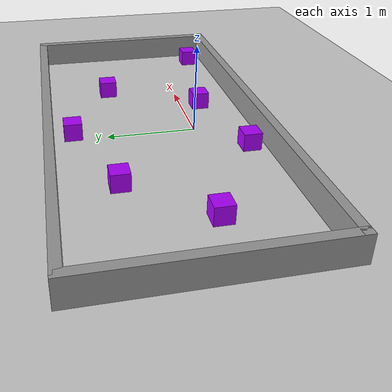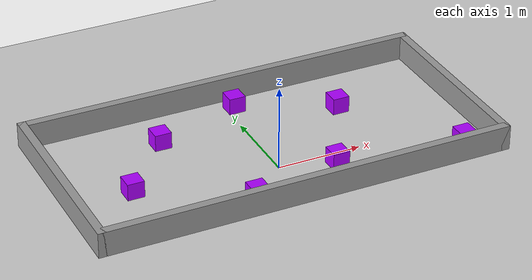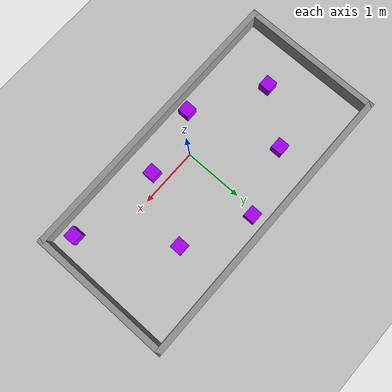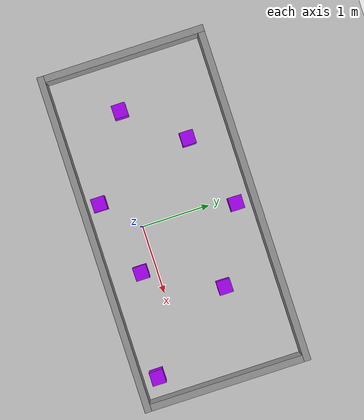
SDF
<sdf version="1.7">
 <world name="default">
  <light name="sun" type="directional">
   <pose>0 0 10 0 -0 0</pose>
   <diffuse>0.8 0.8 0.8 1</diffuse>
   <specular>0.2 0.2 0.2 1</specular>
   <attenuation>
    <range>1000</range>
    <constant>0.9</constant>
    <linear>0.01</linear>
    <quadratic>0.001</quadratic>
   </attenuation>
   <direction>-0.5 0.1 -0.9</direction>
   <spot><inner_angle>0</inner_angle><outer_angle>0</outer_angle><falloff>0</falloff></spot>
  </light>
  <model name="ground_plane">
   <static>1</static>
   <link name="link">
    <collision name="collision">
     <geometry><plane><normal>0 0 1</normal><size>100 100</size></plane></geometry>
     <surface><friction><ode><mu>100</mu><mu2>50</mu2></ode></friction></surface>
    </collision>
    <visual name="visual">
     <cast_shadows>0</cast_shadows>
     <geometry><plane><normal>0 0 1</normal><size>100 100</size></plane></geometry>
     <material>
      <script><uri>file://media/materials/scripts/gazebo.material</uri><name>Gazebo/Grey</name></script>
     </material>
    </visual>
   </link>
  </model>
  <gravity>0 0 -9.8</gravity>
  <magnetic_field>6e-06 2.3e-05 -4.2e-05</magnetic_field>
  <atmosphere type="adiabatic"/>
  <physics type="ode">
   <max_step_size>0.001</max_step_size>
   <real_time_factor>1</real_time_factor>
   <real_time_update_rate>1000</real_time_update_rate>
  </physics>
  <scene><ambient>0.4 0.4 0.4 1</ambient><background>0.7 0.7 0.7 1</background><shadows>1</shadows></scene>
  <audio><device>default</device></audio>
  <spherical_coordinates>
   <surface_model>EARTH_WGS84</surface_model>
   <latitude_deg>0</latitude_deg>
   <longitude_deg>0</longitude_deg>
   <elevation>0</elevation>
   <heading_deg>0</heading_deg>
  </spherical_coordinates>
  <model name="parking_lot">
   <pose>0.03 0.458 0 0 -0 0</pose>
   <link name="Wall_13">
    <collision name="Wall_13_Collision">
     <geometry><box><size>4.94967 0.1 0.3</size></box></geometry>
     <pose>0 0 0.15 0 -0 0</pose>
    </collision>
    <visual name="Wall_13_Visual">
     <pose>0 0 0.15 0 -0 0</pose>
     <geometry><box><size>4.94967 0.1 0.3</size></box></geometry>
     <material>
      <script><uri>file://media/materials/scripts/gazebo.material</uri><name>Gazebo/Grey</name></script>
      <ambient>1 1 1 1</ambient>
     </material>
     <meta><layer>0</layer></meta>
    </visual>
    <pose>0 -1.175 0 0 -0 0</pose>
   </link>
   <link name="Wall_18">
    <collision name="Wall_18_Collision">
     <geometry><box><size>2.45 0.1 0.3</size></box></geometry>
     <pose>0 0 0.15 0 -0 0</pose>
    </collision>
    <visual name="Wall_18_Visual">
     <pose>0 0 0.15 0 -0 0</pose>
     <geometry><box><size>2.45 0.1 0.3</size></box></geometry>
     <material>
      <script><uri>file://media/materials/scripts/gazebo.material</uri><name>Gazebo/Grey</name></script>
      <ambient>1 1 1 1</ambient>
     </material>
     <meta><layer>0</layer></meta>
    </visual>
    <pose>-2.425 0 0 0 -0 1.5708</pose>
   </link>
   <link name="Wall_19">
    <collision name="Wall_19_Collision">
     <geometry><box><size>4.95 0.1 0.3</size></box></geometry>
     <pose>0 0 0.15 0 -0 0</pose>
    </collision>
    <visual name="Wall_19_Visual">
     <pose>0 0 0.15 0 -0 0</pose>
     <geometry><box><size>4.95 0.1 0.3</size></box></geometry>
     <material>
      <script><uri>file://media/materials/scripts/gazebo.material</uri><name>Gazebo/Grey</name></script>
      <ambient>1 1 1 1</ambient>
     </material>
     <meta><layer>0</layer></meta>
    </visual>
    <pose>0 1.175 0 0 -0 0</pose>
   </link>
   <link name="Wall_20">
    <collision name="Wall_20_Collision">
     <geometry><box><size>2.45 0.1 0.3</size></box></geometry>
     <pose>0 0 0.15 0 -0 0</pose>
    </collision>
    <visual name="Wall_20_Visual">
     <pose>0 0 0.15 0 -0 0</pose>
     <geometry><box><size>2.45 0.1 0.3</size></box></geometry>
     <material>
      <script><uri>file://media/materials/scripts/gazebo.material</uri><name>Gazebo/Grey</name></script>
      <ambient>1 1 1 1</ambient>
     </material>
     <meta><layer>0</layer></meta>
    </visual>
    <pose>2.425 0 0 0 -0 -1.5708</pose>
   </link>
   <static>1</static>
  </model>
  <model name="cube_v_clone_2">
   <link name="link_2">
    <pose>0 0 0.1 0 -0 0</pose>
    <inertial>
     <mass>1</mass>
     <inertia>
      <ixx>0.166667</ixx>
      <ixy>0</ixy>
      <ixz>0</ixz>
      <iyy>0.166667</iyy>
      <iyz>0</iyz>
      <izz>0.166667</izz>
     </inertia>
    </inertial>
    <visual name="visual">
     <geometry><box><size>0.2 0.2 0.2</size></box></geometry>
     <material>
      <lighting>1</lighting>
      <script><uri>file://media/materials/scripts/gazebo.material</uri><name>Gazebo/Grey</name></script>
      <ambient>0.682 0 1 1</ambient>
      <diffuse>0.682 0 1 1</diffuse>
      <specular>0 0 0 1</specular>
      <emissive>0 0 0 1</emissive>
      <shader type="vertex"><normal_map>__default__</normal_map></shader>
     </material>
    </visual>
    <collision name="collision">
     <geometry><box><size>0.2 0.2 0.2</size></box></geometry>
     <surface>
      <friction>
       <ode><mu>1</mu><mu2>1</mu2><fdir1>0 0 0</fdir1><slip1>0</slip1><slip2>0</slip2></ode>
       <torsional>
        <coefficient>1</coefficient>
        <patch_radius>0</patch_radius>
        <surface_radius>0</surface_radius>
        <use_patch_radius>1</use_patch_radius>
        <ode><slip>0</slip></ode>
       </torsional>
      </friction>
      <bounce><restitution_coefficient>0</restitution_coefficient><threshold>1e+06</threshold></bounce>
      <contact>
       <collide_without_contact>0</collide_without_contact>
       <collide_without_contact_bitmask>1</collide_without_contact_bitmask>
       <collide_bitmask>1</collide_bitmask>
       <ode>
        <soft_cfm>0</soft_cfm>
        <soft_erp>0.2</soft_erp>
        <kp>1e+13</kp>
        <kd>1</kd>
        <max_vel>0.01</max_vel>
        <min_depth>0</min_depth>
       </ode>
       <bullet>
        <split_impulse>1</split_impulse>
        <split_impulse_penetration_threshold>-0.01</split_impulse_penetration_threshold>
        <soft_cfm>0</soft_cfm>
        <soft_erp>0.2</soft_erp>
        <kp>1e+13</kp>
        <kd>1</kd>
       </bullet>
      </contact>
     </surface>
    </collision>
   </link>
   <static>1</static>
   <pose>-1 1 0 0 -0 0</pose>
  </model>
  <model name="cube_v_clone_2_clone">
   <link name="link_2">
    <pose>0 0 0.1 0 -0 0</pose>
    <inertial>
     <mass>1</mass>
     <inertia>
      <ixx>0.166667</ixx>
      <ixy>0</ixy>
      <ixz>0</ixz>
      <iyy>0.166667</iyy>
      <iyz>0</iyz>
      <izz>0.166667</izz>
     </inertia>
    </inertial>
    <visual name="visual">
     <geometry><box><size>0.2 0.2 0.2</size></box></geometry>
     <material>
      <lighting>1</lighting>
      <script><uri>file://media/materials/scripts/gazebo.material</uri><name>Gazebo/Grey</name></script>
      <ambient>0.682 0 1 1</ambient>
      <diffuse>0.682 0 1 1</diffuse>
      <specular>0 0 0 1</specular>
      <emissive>0 0 0 1</emissive>
      <shader type="vertex"><normal_map>__default__</normal_map></shader>
     </material>
    </visual>
    <collision name="collision">
     <geometry><box><size>0.2 0.2 0.2</size></box></geometry>
     <surface>
      <friction>
       <ode><mu>1</mu><mu2>1</mu2><fdir1>0 0 0</fdir1><slip1>0</slip1><slip2>0</slip2></ode>
       <torsional>
        <coefficient>1</coefficient>
        <patch_radius>0</patch_radius>
        <surface_radius>0</surface_radius>
        <use_patch_radius>1</use_patch_radius>
        <ode><slip>0</slip></ode>
       </torsional>
      </friction>
      <bounce><restitution_coefficient>0</restitution_coefficient><threshold>1e+06</threshold></bounce>
      <contact>
       <collide_without_contact>0</collide_without_contact>
       <collide_without_contact_bitmask>1</collide_without_contact_bitmask>
       <collide_bitmask>1</collide_bitmask>
       <ode>
        <soft_cfm>0</soft_cfm>
        <soft_erp>0.2</soft_erp>
        <kp>1e+13</kp>
        <kd>1</kd>
        <max_vel>0.01</max_vel>
        <min_depth>0</min_depth>
       </ode>
       <bullet>
        <split_impulse>1</split_impulse>
        <split_impulse_penetration_threshold>-0.01</split_impulse_penetration_threshold>
        <soft_cfm>0</soft_cfm>
        <soft_erp>0.2</soft_erp>
        <kp>1e+13</kp>
        <kd>1</kd>
       </bullet>
      </contact>
     </surface>
    </collision>
   </link>
   <static>1</static>
   <pose>-1.6631 0.201551 0 0 -0 0</pose>
  </model>
  <model name="cube_v_clone_2_clone_0">
   <link name="link_2">
    <pose>0 0 0.1 0 -0 0</pose>
    <inertial>
     <mass>1</mass>
     <inertia>
      <ixx>0.166667</ixx>
      <ixy>0</ixy>
      <ixz>0</ixz>
      <iyy>0.166667</iyy>
      <iyz>0</iyz>
      <izz>0.166667</izz>
     </inertia>
    </inertial>
    <visual name="visual">
     <geometry><box><size>0.2 0.2 0.2</size></box></geometry>
     <material>
      <lighting>1</lighting>
      <script><uri>file://media/materials/scripts/gazebo.material</uri><name>Gazebo/Grey</name></script>
      <ambient>0.682 0 1 1</ambient>
      <diffuse>0.682 0 1 1</diffuse>
      <specular>0 0 0 1</specular>
      <emissive>0 0 0 1</emissive>
      <shader type="vertex"><normal_map>__default__</normal_map></shader>
     </material>
    </visual>
    <collision name="collision">
     <geometry><box><size>0.2 0.2 0.2</size></box></geometry>
     <surface>
      <friction>
       <ode><mu>1</mu><mu2>1</mu2><fdir1>0 0 0</fdir1><slip1>0</slip1><slip2>0</slip2></ode>
       <torsional>
        <coefficient>1</coefficient>
        <patch_radius>0</patch_radius>
        <surface_radius>0</surface_radius>
        <use_patch_radius>1</use_patch_radius>
        <ode><slip>0</slip></ode>
       </torsional>
      </friction>
      <bounce><restitution_coefficient>0</restitution_coefficient><threshold>1e+06</threshold></bounce>
      <contact>
       <collide_without_contact>0</collide_without_contact>
       <collide_without_contact_bitmask>1</collide_without_contact_bitmask>
       <collide_bitmask>1</collide_bitmask>
       <ode>
        <soft_cfm>0</soft_cfm>
        <soft_erp>0.2</soft_erp>
        <kp>1e+13</kp>
        <kd>1</kd>
        <max_vel>0.01</max_vel>
        <min_depth>0</min_depth>
       </ode>
       <bullet>
        <split_impulse>1</split_impulse>
        <split_impulse_penetration_threshold>-0.01</split_impulse_penetration_threshold>
        <soft_cfm>0</soft_cfm>
        <soft_erp>0.2</soft_erp>
        <kp>1e+13</kp>
        <kd>1</kd>
       </bullet>
      </contact>
     </surface>
    </collision>
   </link>
   <static>1</static>
   <pose>1.16895 0.848747 0 0 -0 0</pose>
  </model>
  <model name="cube_v_clone_2_clone_1">
   <link name="link_2">
    <pose>0 0 0.1 0 -0 0</pose>
    <inertial>
     <mass>1</mass>
     <inertia>
      <ixx>0.166667</ixx>
      <ixy>0</ixy>
      <ixz>0</ixz>
      <iyy>0.166667</iyy>
      <iyz>0</iyz>
      <izz>0.166667</izz>
     </inertia>
    </inertial>
    <visual name="visual">
     <geometry><box><size>0.2 0.2 0.2</size></box></geometry>
     <material>
      <lighting>1</lighting>
      <script><uri>file://media/materials/scripts/gazebo.material</uri><name>Gazebo/Grey</name></script>
      <ambient>0.682 0 1 1</ambient>
      <diffuse>0.682 0 1 1</diffuse>
      <specular>0 0 0 1</specular>
      <emissive>0 0 0 1</emissive>
      <shader type="vertex"><normal_map>__default__</normal_map></shader>
     </material>
    </visual>
    <collision name="collision">
     <geometry><box><size>0.2 0.2 0.2</size></box></geometry>
     <surface>
      <friction>
       <ode><mu>1</mu><mu2>1</mu2><fdir1>0 0 0</fdir1><slip1>0</slip1><slip2>0</slip2></ode>
       <torsional>
        <coefficient>1</coefficient>
        <patch_radius>0</patch_radius>
        <surface_radius>0</surface_radius>
        <use_patch_radius>1</use_patch_radius>
        <ode><slip>0</slip></ode>
       </torsional>
      </friction>
      <bounce><restitution_coefficient>0</restitution_coefficient><threshold>1e+06</threshold></bounce>
      <contact>
       <collide_without_contact>0</collide_without_contact>
       <collide_without_contact_bitmask>1</collide_without_contact_bitmask>
       <collide_bitmask>1</collide_bitmask>
       <ode>
        <soft_cfm>0</soft_cfm>
        <soft_erp>0.2</soft_erp>
        <kp>1e+13</kp>
        <kd>1</kd>
        <max_vel>0.01</max_vel>
        <min_depth>0</min_depth>
       </ode>
       <bullet>
        <split_impulse>1</split_impulse>
        <split_impulse_penetration_threshold>-0.01</split_impulse_penetration_threshold>
        <soft_cfm>0</soft_cfm>
        <soft_erp>0.2</soft_erp>
        <kp>1e+13</kp>
        <kd>1</kd>
       </bullet>
      </contact>
     </surface>
    </collision>
   </link>
   <static>1</static>
   <pose>0.089935 1.36922 0 0 -0 0</pose>
  </model>
  <model name="cube_v_clone_2_clone_2">
   <link name="link_2">
    <pose>0 0 0.1 0 -0 0</pose>
    <inertial>
     <mass>1</mass>
     <inertia>
      <ixx>0.166667</ixx>
      <ixy>0</ixy>
      <ixz>0</ixz>
      <iyy>0.166667</iyy>
      <iyz>0</iyz>
      <izz>0.166667</izz>
     </inertia>
    </inertial>
    <visual name="visual">
     <geometry><box><size>0.2 0.2 0.2</size></box></geometry>
     <material>
      <lighting>1</lighting>
      <script><uri>file://media/materials/scripts/gazebo.material</uri><name>Gazebo/Grey</name></script>
      <ambient>0.682 0 1 1</ambient>
      <diffuse>0.682 0 1 1</diffuse>
      <specular>0 0 0 1</specular>
      <emissive>0 0 0 1</emissive>
      <shader type="vertex"><normal_map>__default__</normal_map></shader>
     </material>
    </visual>
    <collision name="collision">
     <geometry><box><size>0.2 0.2 0.2</size></box></geometry>
     <surface>
      <friction>
       <ode><mu>1</mu><mu2>1</mu2><fdir1>0 0 0</fdir1><slip1>0</slip1><slip2>0</slip2></ode>
       <torsional>
        <coefficient>1</coefficient>
        <patch_radius>0</patch_radius>
        <surface_radius>0</surface_radius>
        <use_patch_radius>1</use_patch_radius>
        <ode><slip>0</slip></ode>
       </torsional>
      </friction>
      <bounce><restitution_coefficient>0</restitution_coefficient><threshold>1e+06</threshold></bounce>
      <contact>
       <collide_without_contact>0</collide_without_contact>
       <collide_without_contact_bitmask>1</collide_without_contact_bitmask>
       <collide_bitmask>1</collide_bitmask>
       <ode>
        <soft_cfm>0</soft_cfm>
        <soft_erp>0.2</soft_erp>
        <kp>1e+13</kp>
        <kd>1</kd>
        <max_vel>0.01</max_vel>
        <min_depth>0</min_depth>
       </ode>
       <bullet>
        <split_impulse>1</split_impulse>
        <split_impulse_penetration_threshold>-0.01</split_impulse_penetration_threshold>
        <soft_cfm>0</soft_cfm>
        <soft_erp>0.2</soft_erp>
        <kp>1e+13</kp>
        <kd>1</kd>
       </bullet>
      </contact>
     </surface>
    </collision>
   </link>
   <static>1</static>
   <pose>-0.494131 -0.485562 0 0 -0 0</pose>
  </model>
  <model name="cube_v_clone_2_clone_3">
   <link name="link_2">
    <pose>0 0 0.1 0 -0 0</pose>
    <inertial>
     <mass>1</mass>
     <inertia>
      <ixx>0.166667</ixx>
      <ixy>0</ixy>
      <ixz>0</ixz>
      <iyy>0.166667</iyy>
      <iyz>0</iyz>
      <izz>0.166667</izz>
     </inertia>
    </inertial>
    <visual name="visual">
     <geometry><box><size>0.2 0.2 0.2</size></box></geometry>
     <material>
      <lighting>1</lighting>
      <script><uri>file://media/materials/scripts/gazebo.material</uri><name>Gazebo/Grey</name></script>
      <ambient>0.682 0 1 1</ambient>
      <diffuse>0.682 0 1 1</diffuse>
      <specular>0 0 0 1</specular>
      <emissive>0 0 0 1</emissive>
      <shader type="vertex"><normal_map>__default__</normal_map></shader>
     </material>
    </visual>
    <collision name="collision">
     <geometry><box><size>0.2 0.2 0.2</size></box></geometry>
     <surface>
      <friction>
       <ode><mu>1</mu><mu2>1</mu2><fdir1>0 0 0</fdir1><slip1>0</slip1><slip2>0</slip2></ode>
       <torsional>
        <coefficient>1</coefficient>
        <patch_radius>0</patch_radius>
        <surface_radius>0</surface_radius>
        <use_patch_radius>1</use_patch_radius>
        <ode><slip>0</slip></ode>
       </torsional>
      </friction>
      <bounce><restitution_coefficient>0</restitution_coefficient><threshold>1e+06</threshold></bounce>
      <contact>
       <collide_without_contact>0</collide_without_contact>
       <collide_without_contact_bitmask>1</collide_without_contact_bitmask>
       <collide_bitmask>1</collide_bitmask>
       <ode>
        <soft_cfm>0</soft_cfm>
        <soft_erp>0.2</soft_erp>
        <kp>1e+13</kp>
        <kd>1</kd>
        <max_vel>0.01</max_vel>
        <min_depth>0</min_depth>
       </ode>
       <bullet>
        <split_impulse>1</split_impulse>
        <split_impulse_penetration_threshold>-0.01</split_impulse_penetration_threshold>
        <soft_cfm>0</soft_cfm>
        <soft_erp>0.2</soft_erp>
        <kp>1e+13</kp>
        <kd>1</kd>
       </bullet>
      </contact>
     </surface>
    </collision>
   </link>
   <static>1</static>
   <pose>2.10147 -0.453561 0 0 -0 0</pose>
  </model>
  <model name="cube_v_clone_2_clone_4">
   <link name="link_2">
    <pose>0 0 0.1 0 -0 0</pose>
    <inertial>
     <mass>1</mass>
     <inertia>
      <ixx>0.166667</ixx>
      <ixy>0</ixy>
      <ixz>0</ixz>
      <iyy>0.166667</iyy>
      <iyz>0</iyz>
      <izz>0.166667</izz>
     </inertia>
    </inertial>
    <visual name="visual">
     <geometry><box><size>0.2 0.2 0.2</size></box></geometry>
     <material>
      <lighting>1</lighting>
      <script><uri>file://media/materials/scripts/gazebo.material</uri><name>Gazebo/Grey</name></script>
      <ambient>0.682 0 1 1</ambient>
      <diffuse>0.682 0 1 1</diffuse>
      <specular>0 0 0 1</specular>
      <emissive>0 0 0 1</emissive>
      <shader type="vertex"><normal_map>__default__</normal_map></shader>
     </material>
    </visual>
    <collision name="collision">
     <geometry><box><size>0.2 0.2 0.2</size></box></geometry>
     <surface>
      <friction>
       <ode><mu>1</mu><mu2>1</mu2><fdir1>0 0 0</fdir1><slip1>0</slip1><slip2>0</slip2></ode>
       <torsional>
        <coefficient>1</coefficient>
        <patch_radius>0</patch_radius>
        <surface_radius>0</surface_radius>
        <use_patch_radius>1</use_patch_radius>
        <ode><slip>0</slip></ode>
       </torsional>
      </friction>
      <bounce><restitution_coefficient>0</restitution_coefficient><threshold>1e+06</threshold></bounce>
      <contact>
       <collide_without_contact>0</collide_without_contact>
       <collide_without_contact_bitmask>1</collide_without_contact_bitmask>
       <collide_bitmask>1</collide_bitmask>
       <ode>
        <soft_cfm>0</soft_cfm>
        <soft_erp>0.2</soft_erp>
        <kp>1e+13</kp>
        <kd>1</kd>
        <max_vel>0.01</max_vel>
        <min_depth>0</min_depth>
       </ode>
       <bullet>
        <split_impulse>1</split_impulse>
        <split_impulse_penetration_threshold>-0.01</split_impulse_penetration_threshold>
        <soft_cfm>0</soft_cfm>
        <soft_erp>0.2</soft_erp>
        <kp>1e+13</kp>
        <kd>1</kd>
       </bullet>
      </contact>
     </surface>
    </collision>
   </link>
   <static>1</static>
   <pose>0.614704 -0.218825 0 0 -0 0</pose>
  </model>
 </world>
</sdf>
